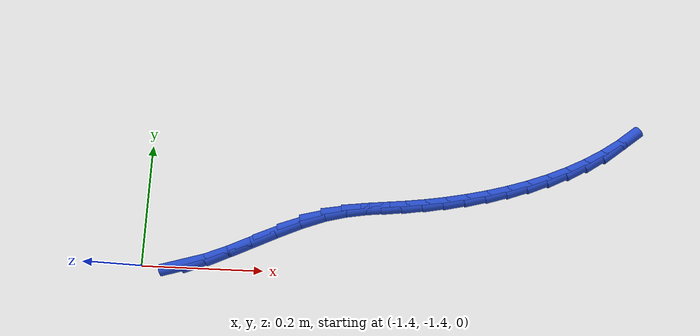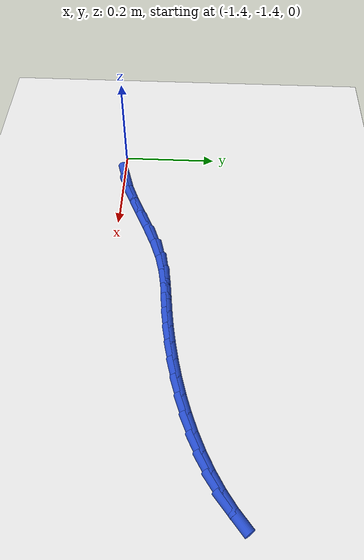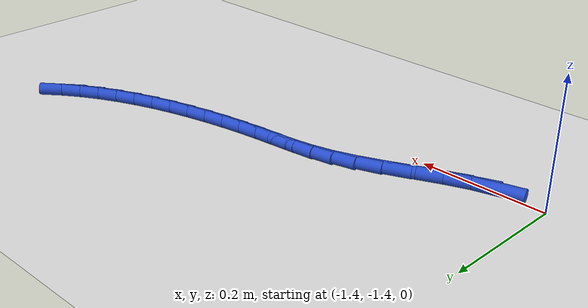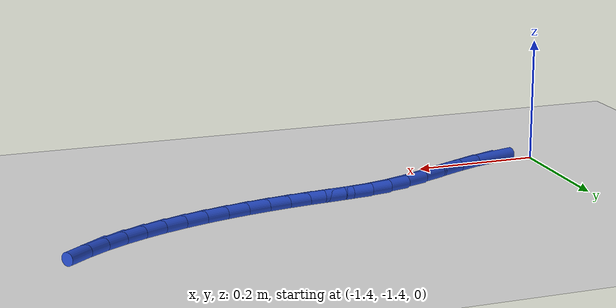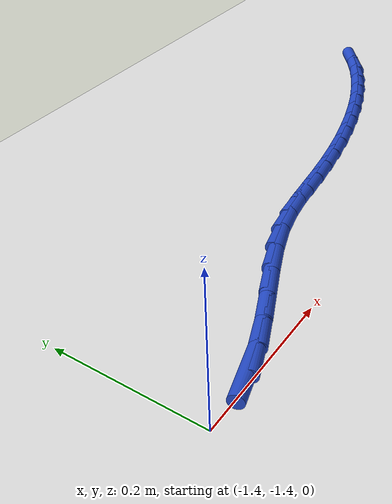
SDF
<sdf version="1.6">
 <world name="default">
  <model name="ground_plane">
   <static>1</static>
   <link name="link">
    <collision name="collision">
     <geometry><plane><normal>0 0 1</normal><size>100 100</size></plane></geometry>
     <surface><friction><ode><mu>100</mu><mu2>50</mu2></ode></friction></surface>
    </collision>
    <visual name="visual">
     <cast_shadows>0</cast_shadows>
     <geometry><plane><normal>0 0 1</normal><size>100 100</size></plane></geometry>
     <material>
      <script><uri>file://media/materials/scripts/gazebo.material</uri><name>Gazebo/WhiteGlow</name></script>
     </material>
    </visual>
   </link>
  </model>
  <model name="line">
   <link name="link_199">
    <pose>-1.3267903144067326 -1.395054086399144 0.01 0 1.57 0.281700606563938</pose>
    <collision name="collision">
     <geometry><cylinder><radius>0.01</radius><length>0.08</length></cylinder></geometry>
    </collision>
    <visual name="visual">
     <material>
      <script><name>Gazebo/Blue</name><uri>file://media/materials/scripts/gazebo.material</uri></script>
     </material>
     <geometry><cylinder><radius>0.01</radius><length>0.08</length></cylinder></geometry>
    </visual>
   </link>
   <link name="link_200">
    <pose>-1.2928797380671682 -1.3852404858600933 0.01 0 1.57 0.38062067057792753</pose>
    <collision name="collision">
     <geometry><cylinder><radius>0.01</radius><length>0.08</length></cylinder></geometry>
    </collision>
    <visual name="visual">
     <material>
      <script><name>Gazebo/Blue</name><uri>file://media/materials/scripts/gazebo.material</uri></script>
     </material>
     <geometry><cylinder><radius>0.01</radius><length>0.08</length></cylinder></geometry>
    </visual>
   </link>
   <link name="link_201">
    <pose>-1.2560775928734522 -1.3705147483156406 0.01 0 1.57 0.4267309033362528</pose>
    <collision name="collision">
     <geometry><cylinder><radius>0.01</radius><length>0.08</length></cylinder></geometry>
    </collision>
    <visual name="visual">
     <material>
      <script><name>Gazebo/Blue</name><uri>file://media/materials/scripts/gazebo.material</uri></script>
     </material>
     <geometry><cylinder><radius>0.01</radius><length>0.08</length></cylinder></geometry>
    </visual>
   </link>
   <link name="link_202">
    <pose>-1.2175385465596391 -1.3529921910188059 0.01 0 1.57 0.4355238160701246</pose>
    <collision name="collision">
     <geometry><cylinder><radius>0.01</radius><length>0.08</length></cylinder></geometry>
    </collision>
    <visual name="visual">
     <material>
      <script><name>Gazebo/Blue</name><uri>file://media/materials/scripts/gazebo.material</uri></script>
     </material>
     <geometry><cylinder><radius>0.01</radius><length>0.08</length></cylinder></geometry>
    </visual>
   </link>
   <link name="link_203">
    <pose>-1.1784172668597819 -1.3347881312226073 0.01 0 1.57 0.41034281704441566</pose>
    <collision name="collision">
     <geometry><cylinder><radius>0.01</radius><length>0.08</length></cylinder></geometry>
    </collision>
    <visual name="visual">
     <material>
      <script><name>Gazebo/Blue</name><uri>file://media/materials/scripts/gazebo.material</uri></script>
     </material>
     <geometry><cylinder><radius>0.01</radius><length>0.08</length></cylinder></geometry>
    </visual>
   </link>
   <link name="link_204">
    <pose>-1.1398684215079342 -1.318017886180065 0.01 0 1.57 0.3448606165247373</pose>
    <collision name="collision">
     <geometry><cylinder><radius>0.01</radius><length>0.08</length></cylinder></geometry>
    </collision>
    <visual name="visual">
     <material>
      <script><name>Gazebo/Blue</name><uri>file://media/materials/scripts/gazebo.material</uri></script>
     </material>
     <geometry><cylinder><radius>0.01</radius><length>0.08</length></cylinder></geometry>
    </visual>
   </link>
   <link name="link_205">
    <pose>-1.103042667247214 -1.3047895167932932 0.01 0 1.57 0.24590803515313708</pose>
    <collision name="collision">
     <geometry><cylinder><radius>0.01</radius><length>0.08</length></cylinder></geometry>
    </collision>
    <visual name="visual">
     <material>
      <script><name>Gazebo/Blue</name><uri>file://media/materials/scripts/gazebo.material</uri></script>
     </material>
     <geometry><cylinder><radius>0.01</radius><length>0.08</length></cylinder></geometry>
    </visual>
   </link>
   <link name="link_206">
    <pose>-1.0684853818539122 -1.2961160636446105 0.01 0 1.57 0.161073961560362</pose>
    <collision name="collision">
     <geometry><cylinder><radius>0.01</radius><length>0.08</length></cylinder></geometry>
    </collision>
    <visual name="visual">
     <material>
      <script><name>Gazebo/Blue</name><uri>file://media/materials/scripts/gazebo.material</uri></script>
     </material>
     <geometry><cylinder><radius>0.01</radius><length>0.08</length></cylinder></geometry>
    </visual>
   </link>
   <link name="link_207">
    <pose>-1.0354956270444395 -1.290755836051487 0.01 0 1.57 0.1100528319009786</pose>
    <collision name="collision">
     <geometry><cylinder><radius>0.01</radius><length>0.08</length></cylinder></geometry>
    </collision>
    <visual name="visual">
     <material>
      <script><name>Gazebo/Blue</name><uri>file://media/materials/scripts/gazebo.material</uri></script>
     </material>
     <geometry><cylinder><radius>0.01</radius><length>0.08</length></cylinder></geometry>
    </visual>
   </link>
   <link name="link_208">
    <pose>-1.0032188723942657 -1.2871892772159141 0.01 0 1.57 0.10118953314003258</pose>
    <collision name="collision">
     <geometry><cylinder><radius>0.01</radius><length>0.08</length></cylinder></geometry>
    </collision>
    <visual name="visual">
     <material>
      <script><name>Gazebo/Blue</name><uri>file://media/materials/scripts/gazebo.material</uri></script>
     </material>
     <geometry><cylinder><radius>0.01</radius><length>0.08</length></cylinder></geometry>
    </visual>
   </link>
   <link name="link_209">
    <pose>-0.970801263224941 -1.2838977123383806 0.01 0 1.57 0.12519455510608662</pose>
    <collision name="collision">
     <geometry><cylinder><radius>0.01</radius><length>0.08</length></cylinder></geometry>
    </collision>
    <visual name="visual">
     <material>
      <script><name>Gazebo/Blue</name><uri>file://media/materials/scripts/gazebo.material</uri></script>
     </material>
     <geometry><cylinder><radius>0.01</radius><length>0.08</length></cylinder></geometry>
    </visual>
   </link>
   <link name="link_210">
    <pose>-0.9376689360683762 -1.2797279172426144 0.01 0 1.57 0.1551756781675843</pose>
    <collision name="collision">
     <geometry><cylinder><radius>0.01</radius><length>0.08</length></cylinder></geometry>
    </collision>
    <visual name="visual">
     <material>
      <script><name>Gazebo/Blue</name><uri>file://media/materials/scripts/gazebo.material</uri></script>
     </material>
     <geometry><cylinder><radius>0.01</radius><length>0.08</length></cylinder></geometry>
    </visual>
   </link>
   <link name="link_211">
    <pose>-0.9039589266807303 -1.2744545488962877 0.01 0 1.57 0.18747011987294376</pose>
    <collision name="collision">
     <geometry><cylinder><radius>0.01</radius><length>0.08</length></cylinder></geometry>
    </collision>
    <visual name="visual">
     <material>
      <script><name>Gazebo/Blue</name><uri>file://media/materials/scripts/gazebo.material</uri></script>
     </material>
     <geometry><cylinder><radius>0.01</radius><length>0.08</length></cylinder></geometry>
    </visual>
   </link>
   <link name="link_212">
    <pose>-0.869919416142397 -1.2679973335639234 0.01 0 1.57 0.22254565945602378</pose>
    <collision name="collision">
     <geometry><cylinder><radius>0.01</radius><length>0.08</length></cylinder></geometry>
    </collision>
    <visual name="visual">
     <material>
      <script><name>Gazebo/Blue</name><uri>file://media/materials/scripts/gazebo.material</uri></script>
     </material>
     <geometry><cylinder><radius>0.01</radius><length>0.08</length></cylinder></geometry>
    </visual>
   </link>
   <link name="link_213">
    <pose>-0.8357985855337695 -1.2602759975100455 0.01 0 1.57 0.2609141363349035</pose>
    <collision name="collision">
     <geometry><cylinder><radius>0.01</radius><length>0.08</length></cylinder></geometry>
    </collision>
    <visual name="visual">
     <material>
      <script><name>Gazebo/Blue</name><uri>file://media/materials/scripts/gazebo.material</uri></script>
     </material>
     <geometry><cylinder><radius>0.01</radius><length>0.08</length></cylinder></geometry>
    </visual>
   </link>
   <link name="link_214">
    <pose>-0.8018446159352428 -1.2512102669991774 0.01 0 1.57 0.3031424616401406</pose>
    <collision name="collision">
     <geometry><cylinder><radius>0.01</radius><length>0.08</length></cylinder></geometry>
    </collision>
    <visual name="visual">
     <material>
      <script><name>Gazebo/Blue</name><uri>file://media/materials/scripts/gazebo.material</uri></script>
     </material>
     <geometry><cylinder><radius>0.01</radius><length>0.08</length></cylinder></geometry>
    </visual>
   </link>
   <link name="link_215">
    <pose>-0.76830568842721 -1.2407198682958431 0.01 0 1.57 0.3498596609522948</pose>
    <collision name="collision">
     <geometry><cylinder><radius>0.01</radius><length>0.08</length></cylinder></geometry>
    </collision>
    <visual name="visual">
     <material>
      <script><name>Gazebo/Blue</name><uri>file://media/materials/scripts/gazebo.material</uri></script>
     </material>
     <geometry><cylinder><radius>0.01</radius><length>0.08</length></cylinder></geometry>
    </visual>
   </link>
   <link name="link_216">
    <pose>-0.7354299840900647 -1.2287245276645657 0.01 0 1.57 0.4017574600956082</pose>
    <collision name="collision">
     <geometry><cylinder><radius>0.01</radius><length>0.08</length></cylinder></geometry>
    </collision>
    <visual name="visual">
     <material>
      <script><name>Gazebo/Blue</name><uri>file://media/materials/scripts/gazebo.material</uri></script>
     </material>
     <geometry><cylinder><radius>0.01</radius><length>0.08</length></cylinder></geometry>
    </visual>
   </link>
   <link name="link_217">
    <pose>-0.7034656840042005 -1.2151439713698695 0.01 0 1.57 0.4595799528972238</pose>
    <collision name="collision">
     <geometry><cylinder><radius>0.01</radius><length>0.08</length></cylinder></geometry>
    </collision>
    <visual name="visual">
     <material>
      <script><name>Gazebo/Blue</name><uri>file://media/materials/scripts/gazebo.material</uri></script>
     </material>
     <geometry><cylinder><radius>0.01</radius><length>0.08</length></cylinder></geometry>
    </visual>
   </link>
   <link name="link_218">
    <pose>-0.672660969250011 -1.1998979256762772 0.01 0 1.57 0.5240954394949111</pose>
    <collision name="collision">
     <geometry><cylinder><radius>0.01</radius><length>0.08</length></cylinder></geometry>
    </collision>
    <visual name="visual">
     <material>
      <script><name>Gazebo/Blue</name><uri>file://media/materials/scripts/gazebo.material</uri></script>
     </material>
     <geometry><cylinder><radius>0.01</radius><length>0.08</length></cylinder></geometry>
    </visual>
   </link>
   <link name="link_219">
    <pose>-0.6432640209078899 -1.1829061168483126 0.01 0 1.57 0.5960410361717856</pose>
    <collision name="collision">
     <geometry><cylinder><radius>0.01</radius><length>0.08</length></cylinder></geometry>
    </collision>
    <visual name="visual">
     <material>
      <script><name>Gazebo/Blue</name><uri>file://media/materials/scripts/gazebo.material</uri></script>
     </material>
     <geometry><cylinder><radius>0.01</radius><length>0.08</length></cylinder></geometry>
    </visual>
   </link>
   <link name="link_220">
    <pose>-0.61552302005823 -1.164088271150499 0.01 0 1.57 0.6760295643748855</pose>
    <collision name="collision">
     <geometry><cylinder><radius>0.01</radius><length>0.08</length></cylinder></geometry>
    </collision>
    <visual name="visual">
     <material>
      <script><name>Gazebo/Blue</name><uri>file://media/materials/scripts/gazebo.material</uri></script>
     </material>
     <geometry><cylinder><radius>0.01</radius><length>0.08</length></cylinder></geometry>
    </visual>
   </link>
  </model>
 </world>
</sdf>
